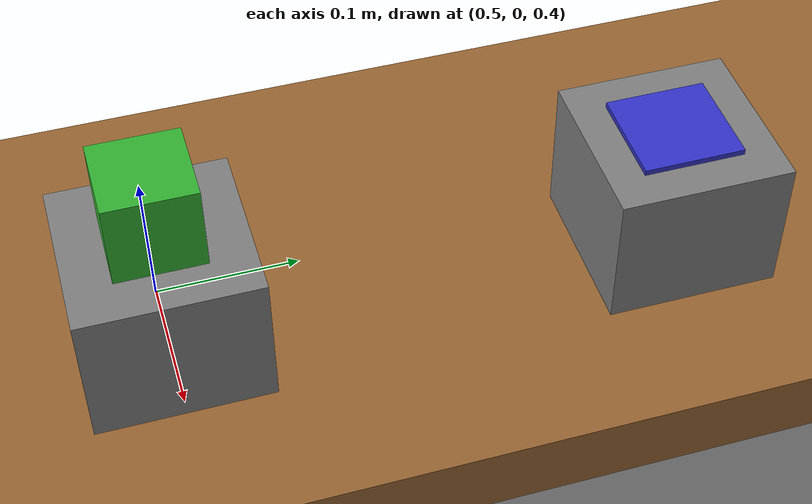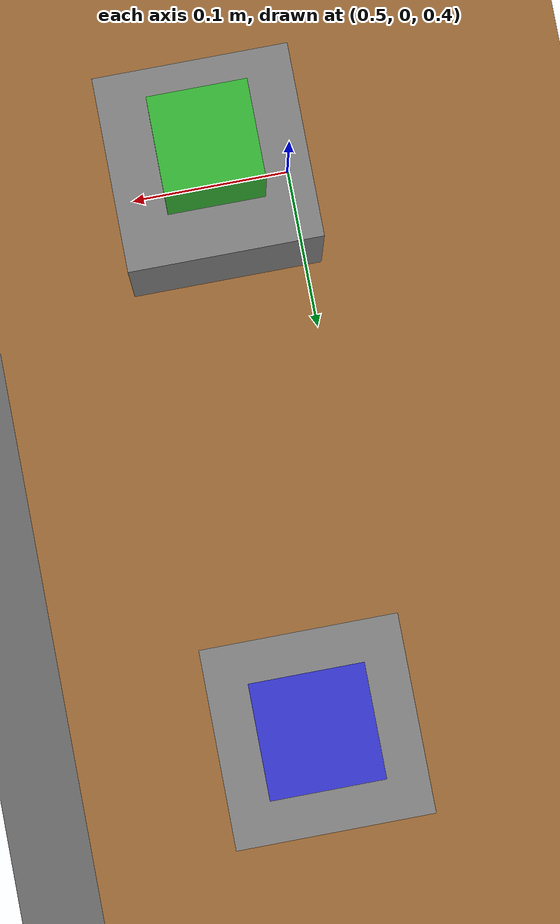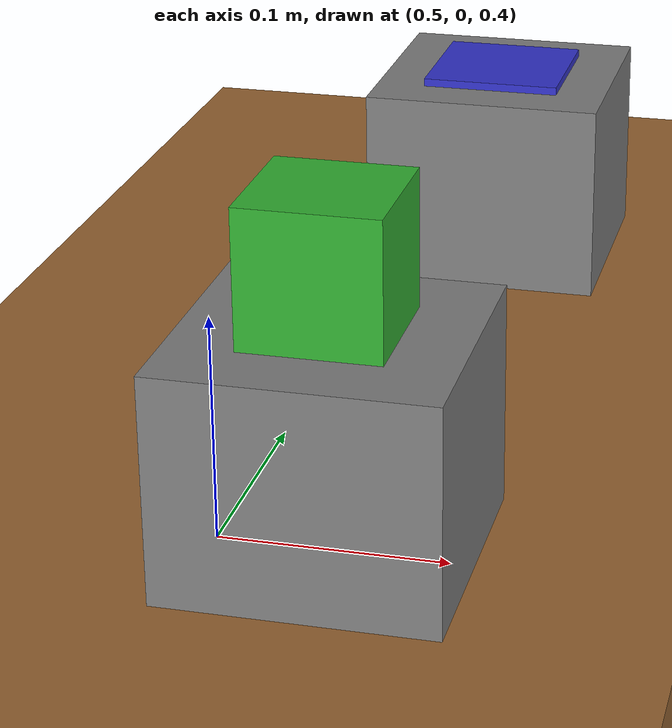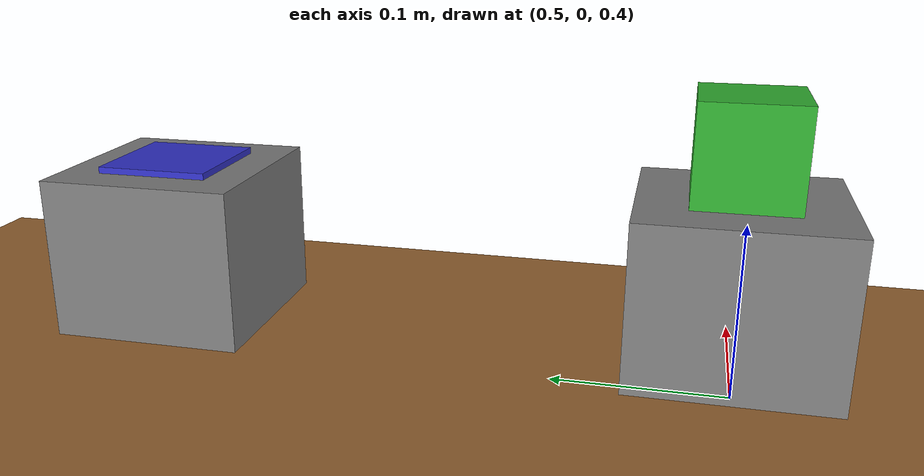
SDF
<?xml version="1.0" ?>
<sdf version="1.7">
  <world name="panda_pick_and_place">

    <light name="sun" type="directional">
      <cast_shadows>1</cast_shadows>
      <pose>0 0 10 0 0 0</pose>
      <diffuse>0.8 0.8 0.8 1</diffuse>
      <specular>0.2 0.2 0.2 1</specular>
      <direction>-0.5 0.1 -0.9</direction>
    </light>

    <!-- Ground plane -->
    <model name="ground_plane">
      <static>true</static>
      <link name="link">
        <collision name="surface">
          <geometry>
            <plane><normal>0 0 1</normal><size>20 20</size></plane>
          </geometry>
        </collision>
        <visual name="visual">
          <geometry>
            <plane><normal>0 0 1</normal><size>20 20</size></plane>
          </geometry>
          <material>
            <ambient>0.4 0.4 0.4 1</ambient>
            <diffuse>0.4 0.4 0.4 1</diffuse>
          </material>
        </visual>
      </link>
    </model>

    <!-- Table the robot sits on -->
    <model name="table">
      <static>true</static>
      <pose>0 0 0.375 0 0 0</pose>
      <link name="table_top">
        <collision name="collision">
          <geometry>
            <box><size>1.4 1.4 0.05</size></box>
          </geometry>
        </collision>
        <visual name="visual">
          <geometry>
            <box><size>1.4 1.4 0.05</size></box>
          </geometry>
          <material>
            <ambient>0.6 0.4 0.2 1</ambient>
            <diffuse>0.6 0.4 0.2 1</diffuse>
          </material>
        </visual>
      </link>
    </model>

    <!-- Pick pedestal: raises target_box (table top z=0.40, pedestal top z=0.50) -->
    <model name="pick_pedestal">
      <static>true</static>
      <pose>0.55 0.0 0.45 0 0 0</pose>
      <link name="link">
        <collision name="collision">
          <geometry><box><size>0.12 0.12 0.10</size></box></geometry>
        </collision>
        <visual name="visual">
          <geometry><box><size>0.12 0.12 0.10</size></box></geometry>
          <material>
            <ambient>0.5 0.5 0.5 1</ambient>
            <diffuse>0.5 0.5 0.5 1</diffuse>
          </material>
        </visual>
      </link>
    </model>

    <!-- Place pedestal: same height as pick pedestal for consistent GRASP_Z -->
    <model name="place_pedestal">
      <static>true</static>
      <pose>0.55 0.35 0.45 0 0 0</pose>
      <link name="link">
        <collision name="collision">
          <geometry><box><size>0.12 0.12 0.10</size></box></geometry>
        </collision>
        <visual name="visual">
          <geometry><box><size>0.12 0.12 0.10</size></box></geometry>
          <material>
            <ambient>0.5 0.5 0.5 1</ambient>
            <diffuse>0.5 0.5 0.5 1</diffuse>
          </material>
        </visual>
      </link>
    </model>

    <!-- Pick target: green box on pedestal (pedestal top z=0.50, box center z=0.530) -->
    <model name="target_box">
      <static>false</static>
      <pose>0.55 0.0 0.530 0 0 0</pose>
      <link name="link">
        <inertial>
          <mass>0.1</mass>
          <inertia>
            <ixx>7.20e-5</ixx><iyy>7.20e-5</iyy><izz>7.20e-5</izz>
          </inertia>
        </inertial>
        <collision name="collision">
          <geometry><box><size>0.06 0.06 0.06</size></box></geometry>
        </collision>
        <visual name="visual">
          <geometry><box><size>0.06 0.06 0.06</size></box></geometry>
          <material>
            <ambient>0.2 0.7 0.2 1</ambient>
            <diffuse>0.2 0.7 0.2 1</diffuse>
          </material>
        </visual>
      </link>
    </model>

    <!-- Place target: blue marker on place pedestal -->
    <model name="place_target">
      <static>true</static>
      <pose>0.55 0.35 0.502 0 0 0</pose>
      <link name="link">
        <visual name="visual">
          <geometry><box><size>0.07 0.07 0.004</size></box></geometry>
          <material>
            <ambient>0.2 0.2 0.8 1</ambient>
            <diffuse>0.2 0.2 0.8 1</diffuse>
          </material>
        </visual>
      </link>
    </model>

  </world>
</sdf>
